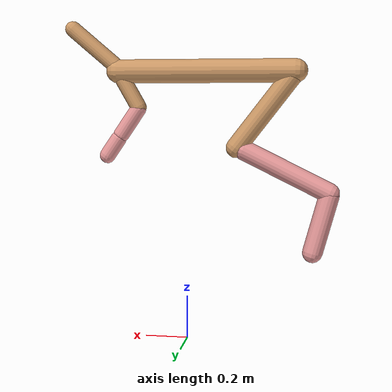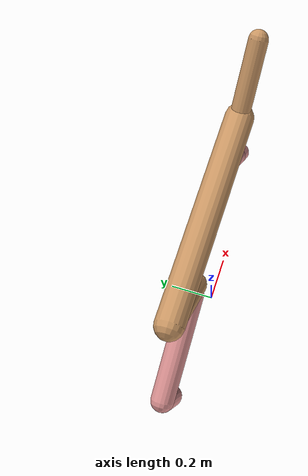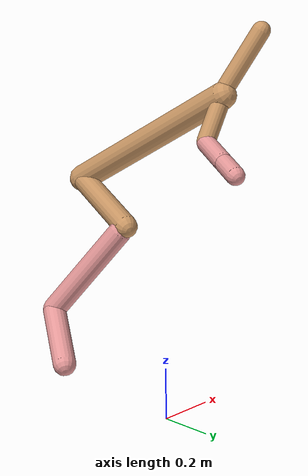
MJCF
<mujoco model="cheetah">
  <compiler angle="radian" coordinate="local" inertiafromgeom="true" settotalmass="14" />
  <default>
    <joint armature=".1" damping=".01" limited="true" solimplimit="0 .8 .03" solreflimit=".02 1" stiffness="8" />
    <geom conaffinity="0" condim="3" contype="1" friction="0.8 .1 .1" rgba="0.8 0.6 .4 1" solimp="0.0 0.8 0.01" solref="0.02 1" />
    <motor ctrllimited="true" ctrlrange="-1 1" />
  </default>
  <size nstack="300000" nuser_geom="1" />
  <option gravity="0 0 -9.81" timestep="0.01" />
  <worldbody>
    <body name="torso" pos="0.0 0.0 1.2548697805711497">
      <joint armature="0" axis="1 0 0" damping="0" limited="false" name="ignorex" pos="0 0 0" stiffness="0" type="slide" />
      <joint armature="0" axis="0 0 1" damping="0" limited="false" name="ignorez" pos="0 0 0" stiffness="0" type="slide" />
      <joint armature="0" axis="0 1 0" damping="0" limited="false" name="ignorey" pos="0 0 0" stiffness="0" type="hinge" />
      <geom fromto="-0.5 0.0 0.0 0.3253994353160036 0.0 0.0" name="torso" size="0.054904409424986776" type="capsule" />
      <geom axisangle="0 1 0 .87" name="head" pos="0.42539943531600366 0.0 0.1" size="0.03697469313539651 0.15" type="capsule" />

      <body name="bthigh" pos="-.5 0 0">
        <joint axis="0 1 0" damping="6" name="bthigh" pos="0 0 0" range="-.52 1.05" stiffness="240" type="hinge" />
        <geom axisangle="0 1 0 -3.8" name="bthigh" pos="0.14157200087479488 0.0 -0.18404360113723334" size="0.0468875050743684 0.21318315100238705" type="capsule" />
        <body name="bshin" pos="0.24314400174958978 0.0 -0.35808720227446666">
          <joint axis="0 1 0" damping="4.5" name="bshin" pos="0 0 0" range="-.785 .785" stiffness="180" type="hinge" />
          <geom axisangle="0 1 0 -2.03" name="bshin" pos="-0.2030877905771602 0.0 -0.1015438952885801" rgba="0.9 0.6 0.6 1" size="0.0468875050743684 0.2205342941404004" type="capsule" />
          <body name="bfoot" pos="-0.4061755811543204 0.0 -0.2030877905771602">
            <joint axis="0 1 0" damping="3" name="bfoot" pos="0 0 0" range="-.4 .785" stiffness="120" type="hinge" />
            <geom axisangle="0 1 0 -.27" name="bfoot" pos="0.04306020229693178 0.0 -0.13922798742674608" rgba="0.9 0.6 0.6 1" size="0.0468875050743684 0.13820149099465093" type="capsule" />
            <inertial mass="10" />
          </body>
        </body>
      </body>
      <body name="fthigh" pos="0.3253994353160037 0.0 0.0">
        <joint axis="0 1 0" damping="4.5" name="fthigh" pos="0 0 0" range="-1.5 0.8" stiffness="180" type="hinge" />
        <geom axisangle="0 1 0 .52" name="fthigh" pos="-0.04989554608158897 0.0 -0.0855352218541525" size="0.03728024971618609 0.0931" type="capsule" />
        <body name="fshin" pos="-0.09979109216317794 0.0 -0.171070443708305">
          <joint axis="0 1 0" damping="3" name="fshin" pos="0 0 0" range="-1.2 1.1" stiffness="120" type="hinge" />
          <geom axisangle="0 1 0 -.6" name="fshin" pos="0.046381400387749405 0.0 -0.06422040053688378" rgba="0.9 0.6 0.6 1" size="0.03728024971618609 0.07419999999999999" type="capsule" />
          <body name="ffoot" pos="0.09276280077549881 0.0 -0.12844080107376757">
            <joint axis="0 1 0" damping="1.5" name="ffoot" pos="0 0 0" range="-3.1 -0.3" stiffness="60" type="hinge" />
            <geom axisangle="0 1 0 -.6" name="ffoot" pos="0.033644090582416526 0.0 -0.05233525201709238" rgba="0.9 0.6 0.6 1" size="0.03728024971618609 0.049" type="capsule" />
            <inertial mass="10" />
          </body>
        </body>
      </body>
    </body>
  </worldbody>
  <actuator>
    <motor gear="120" joint="bthigh" name="bthigh" />
    <motor gear="90" joint="bshin" name="bshin" />
    <motor gear="60" joint="bfoot" name="bfoot" />
    <motor gear="120" joint="fthigh" name="fthigh" />
    <motor gear="60" joint="fshin" name="fshin" />
    <motor gear="30" joint="ffoot" name="ffoot" />
  </actuator>
</mujoco>
